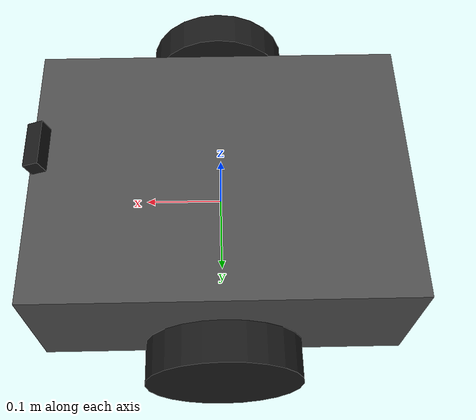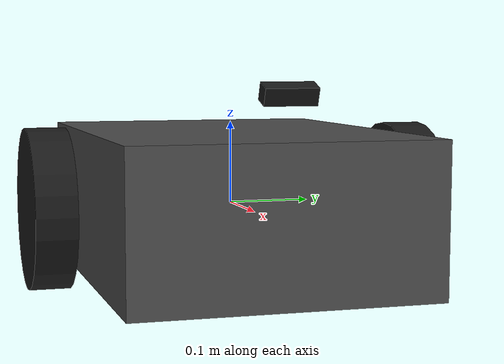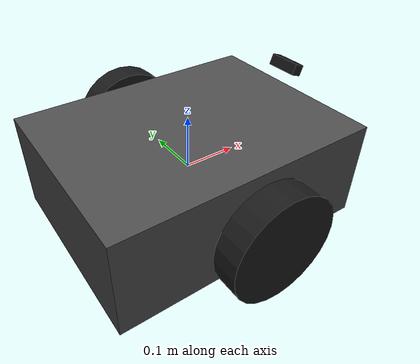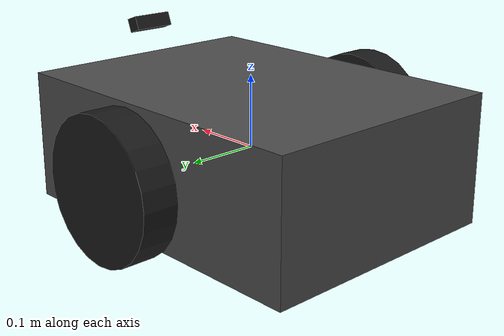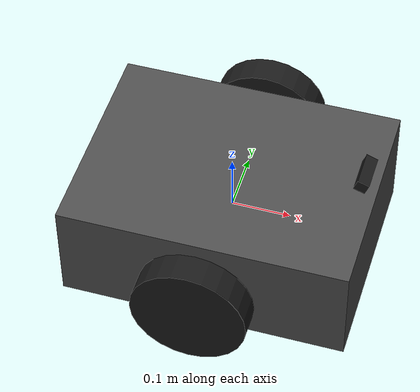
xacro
<?xml version="1.0"?>
<robot name="uni_rover" xmlns:xacro="http://www.ros.org/wiki/xacro">

  <!-- Dimensioni del rover -->
  <xacro:property name="chassis_length" value="0.48"/>
  <xacro:property name="chassis_width"  value="0.36"/>
  <xacro:property name="chassis_height" value="0.18"/>
  <xacro:property name="chassis_mass"   value="8.6"/>

  <xacro:property name="wheel_radius" value="0.096"/>
  <xacro:property name="wheel_width"  value="0.048"/>
  <xacro:property name="wheel_mass"   value="0.86"/>
  <xacro:property name="wheel_ygap"   value="0.024"/>

  <xacro:property name="caster_radius" value="0.036"/>
  <xacro:property name="caster_mass"   value="0.17"/>

  <!-- Distanza laterale del centro ruota dal centro del telaio -->
  <xacro:property name="wheel_yoff" value="${chassis_width/2 + wheel_ygap + wheel_width/2}"/>

  <!-- Macro di supporto per il tensore d'inerzia -->
  <xacro:macro name="box_inertia" params="mass x y z">
    <inertial>
      <mass value="${mass}"/>
      <inertia ixx="${mass/12*(y*y+z*z)}" ixy="0" ixz="0"
               iyy="${mass/12*(x*x+z*z)}" iyz="0"
               izz="${mass/12*(x*x+y*y)}"/>
    </inertial>
  </xacro:macro>

  <xacro:macro name="cylinder_inertia" params="mass r h">
    <inertial>
      <mass value="${mass}"/>
      <inertia ixx="${mass/12*(3*r*r+h*h)}" ixy="0" ixz="0"
               iyy="${mass/12*(3*r*r+h*h)}" iyz="0"
               izz="${mass/2*(r*r)}"/>
    </inertial>
  </xacro:macro>

  <xacro:macro name="sphere_inertia" params="mass r">
    <inertial>
      <mass value="${mass}"/>
      <inertia ixx="${2*mass/5*(r*r)}" ixy="0" ixz="0"
               iyy="${2*mass/5*(r*r)}" iyz="0"
               izz="${2*mass/5*(r*r)}"/>
    </inertial>
  </xacro:macro>

  <!-- Telaio  -->
  <link name="base_link">
    <visual>
      <origin xyz="0 0 0" rpy="0 0 0"/>
      <geometry>
        <box size="${chassis_length} ${chassis_width} ${chassis_height}"/>
      </geometry>
      <material name="grigio">
        <color rgba="0.3 0.3 0.3 1.0"/>
      </material>
    </visual>
    <collision>
      <origin xyz="0 0 0" rpy="0 0 0"/>
      <geometry>
        <box size="${chassis_length} ${chassis_width} ${chassis_height}"/>
      </geometry>
    </collision>
    <xacro:box_inertia mass="${chassis_mass}" x="${chassis_length}" y="${chassis_width}" z="${chassis_height}"/>
  </link>

  <!-- Macro per una ruota motrice -->
  <xacro:macro name="ruota_motrice" params="prefix y_reflect">
    <link name="${prefix}_wheel_link">
      <visual>
        <origin xyz="0 0 0" rpy="${pi/2} 0 0"/>
        <geometry>
          <cylinder radius="${wheel_radius}" length="${wheel_width}"/>
        </geometry>
        <material name="nero">
          <color rgba="0.1 0.1 0.1 1.0"/>
        </material>
      </visual>
      <collision>
        <origin xyz="0 0 0" rpy="${pi/2} 0 0"/>
        <geometry>
          <cylinder radius="${wheel_radius}" length="${wheel_width}"/>
        </geometry>
      </collision>
      <xacro:cylinder_inertia mass="${wheel_mass}" r="${wheel_radius}" h="${wheel_width}"/>
    </link>

    <joint name="${prefix}_wheel_joint" type="continuous">
      <parent link="base_link"/>
      <child link="${prefix}_wheel_link"/>
      <origin xyz="0 ${y_reflect * wheel_yoff} 0" rpy="0 0 0"/>
      <axis xyz="0 1 0"/>
    </joint>
  </xacro:macro>

  <xacro:ruota_motrice prefix="left"  y_reflect="1"/>
  <xacro:ruota_motrice prefix="right" y_reflect="-1"/>

  <!-- Ruota folle posteriore -->
  <link name="caster_wheel_link">
    <visual>
      <geometry>
        <sphere radius="${caster_radius}"/>
      </geometry>
      <material name="nero"/>
    </visual>
    <collision>
      <geometry>
        <sphere radius="${caster_radius}"/>
      </geometry>
    </collision>
    <xacro:sphere_inertia mass="${caster_mass}" r="${caster_radius}"/>
  </link>

  <joint name="caster_wheel_joint" type="fixed">
    <parent link="base_link"/>
    <child link="caster_wheel_link"/>
    <origin xyz="${-chassis_length/2 + caster_radius} 0 ${-(wheel_radius - caster_radius)}" rpy="0 0 0"/>
  </joint>

  <!-- Attrito ridotto sulla ruota folle per non ostacolare lo sterzo -->
  <gazebo reference="caster_wheel_link">
    <mu1>0.01</mu1>
    <mu2>0.01</mu2>
  </gazebo>

  <!-- LiDAR planare -->
  <link name="lidar_link">
    <visual>
      <geometry>
        <cylinder radius="0.03" length="0.04"/>
      </geometry>
      <material name="nero"/>
    </visual>
    <collision>
      <geometry>
        <cylinder radius="0.03" length="0.04"/>
      </geometry>
    </collision>
    <xacro:cylinder_inertia mass="0.1" r="0.03" h="0.04"/>
  </link>

  <joint name="lidar_joint" type="fixed">
    <parent link="base_link"/>
    <child link="lidar_link"/>
    <origin xyz="${chassis_length/2 - 0.03} 0 ${-chassis_height/2 + 0.05}" rpy="0 0 0"/>
  </joint>

  <gazebo reference="lidar_joint">
    <disableFixedJointLumping>true</disableFixedJointLumping>
  </gazebo>

  <gazebo reference="lidar_link">
    <sensor name="lidar" type="gpu_lidar">
      <pose>0 0 0 0 0 0</pose>
      <topic>scan_raw</topic>
      <frame_id>lidar_link</frame_id>
      <update_rate>10</update_rate>
      <always_on>true</always_on>
      <visualize>true</visualize>
      <lidar>
        <scan>
          <horizontal>
            <samples>360</samples>
            <resolution>1</resolution>
            <min_angle>-3.14159</min_angle>
            <max_angle>3.14159</max_angle>
          </horizontal>
        </scan>
        <range>
          <min>0.12</min>
          <max>10.0</max>
          <resolution>0.01</resolution>
        </range>
      </lidar>
    </sensor>
  </gazebo>

  <!-- Camera RGB -->
  <link name="camera_link">
    <visual>
      <geometry>
        <box size="0.02 0.06 0.02"/>
      </geometry>
      <material name="nero"/>
    </visual>
    <collision>
      <geometry>
        <box size="0.02 0.06 0.02"/>
      </geometry>
    </collision>
    <xacro:box_inertia mass="0.05" x="0.02" y="0.06" z="0.02"/>
  </link>

  <joint name="camera_joint" type="fixed">
    <parent link="base_link"/>
    <child link="camera_link"/>
    <origin xyz="${chassis_length/2 - 0.02} 0 ${chassis_height/2 + 0.05}" rpy="0 0.35 0"/>
  </joint>

  <gazebo reference="camera_joint">
    <disableFixedJointLumping>true</disableFixedJointLumping>
  </gazebo>

  <!-- Frame ottico -->
  <link name="camera_link_optical"/>

  <joint name="camera_optical_joint" type="fixed">
    <parent link="camera_link"/>
    <child link="camera_link_optical"/>
    <origin xyz="0 0 0" rpy="${-pi/2} 0 ${-pi/2}"/>
  </joint>

  <gazebo reference="camera_optical_joint">
    <disableFixedJointLumping>true</disableFixedJointLumping>
  </gazebo>

  <gazebo reference="camera_link">
    <sensor name="camera" type="camera">
      <pose>0 0 0 0 0 0</pose>
      <topic>camera/image</topic>
      <frame_id>camera_link_optical</frame_id>
      <update_rate>15</update_rate>
      <always_on>true</always_on>
      <visualize>true</visualize>
      <camera>
        <horizontal_fov>1.3</horizontal_fov>
        <image>
          <width>640</width>
          <height>480</height>
        </image>
        <clip>
          <near>0.05</near>
          <far>20.0</far>
        </clip>
      </camera>
    </sensor>
  </gazebo>

  <!-- Plugin di controllo differential drive -->
  <gazebo>
    <plugin filename="gz-sim-diff-drive-system" name="gz::sim::systems::DiffDrive">
      <left_joint>left_wheel_joint</left_joint>
      <right_joint>right_wheel_joint</right_joint>
      <wheel_separation>${2*wheel_yoff}</wheel_separation>
      <wheel_radius>${wheel_radius}</wheel_radius>
      <odom_publish_frequency>30</odom_publish_frequency>
      <topic>cmd_vel</topic>
      <odom_topic>odom</odom_topic>
      <tf_topic>/tf</tf_topic>
      <frame_id>odom</frame_id>
      <child_frame_id>base_link</child_frame_id>
    </plugin>

    <!-- Pubblicazione delle trasformazioni tra i link del robot -->
    <plugin filename="gz-sim-joint-state-publisher-system" name="gz::sim::systems::JointStatePublisher">
      <topic>joint_states</topic>
    </plugin>
  </gazebo>

</robot>
